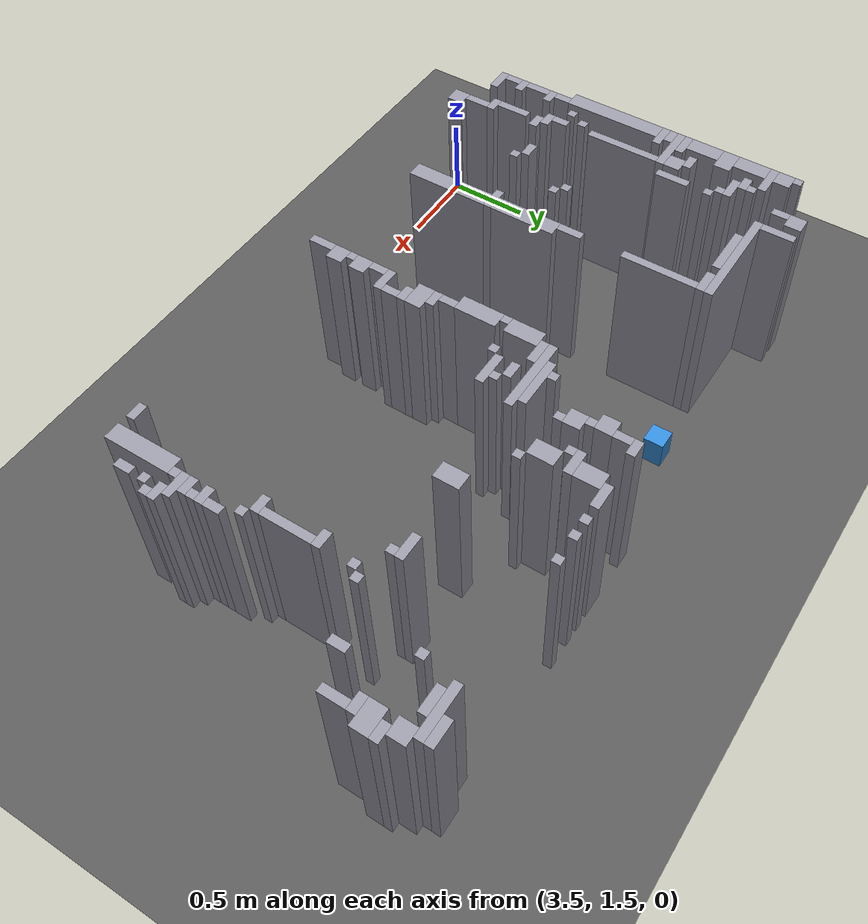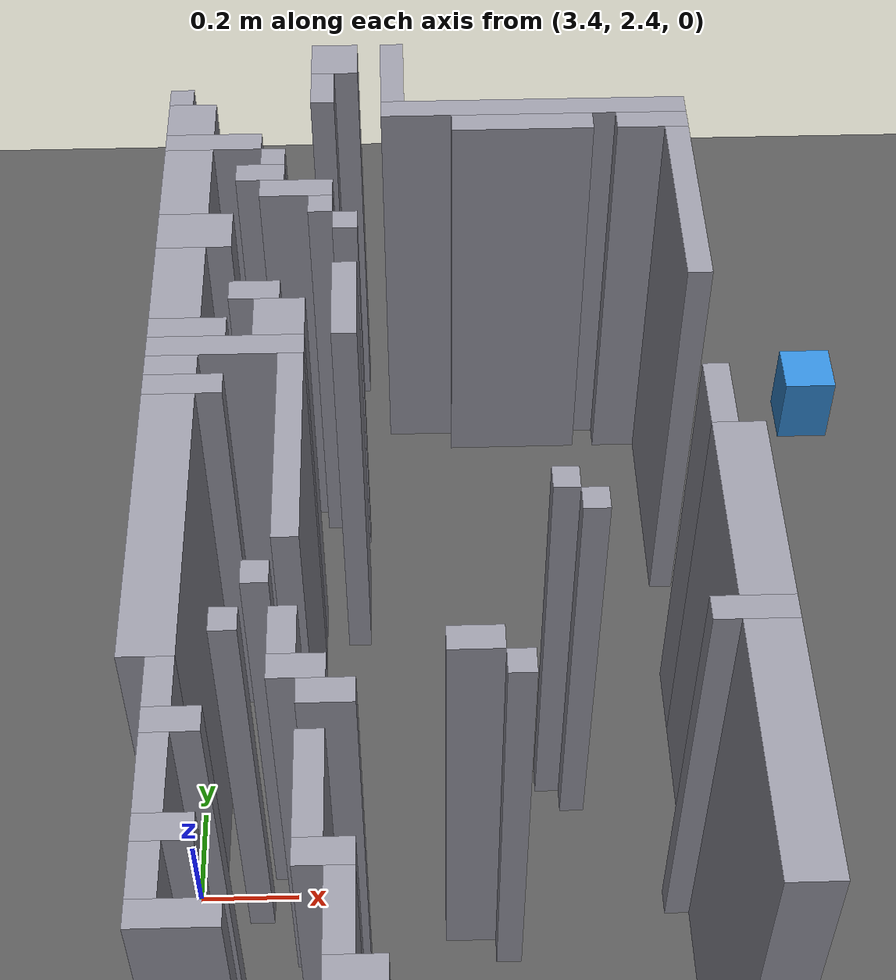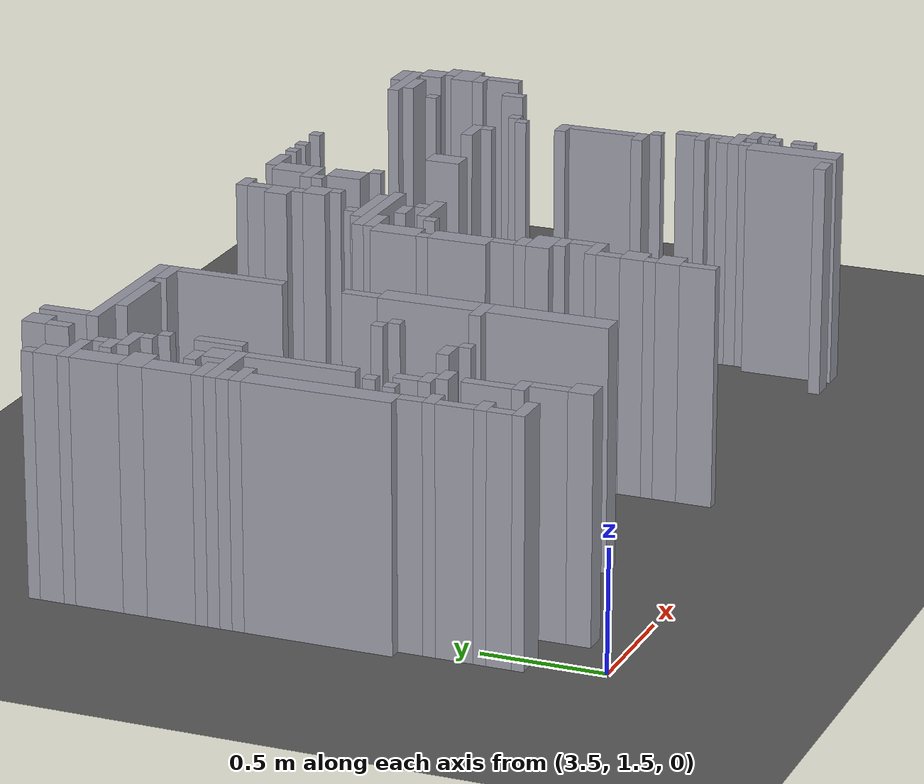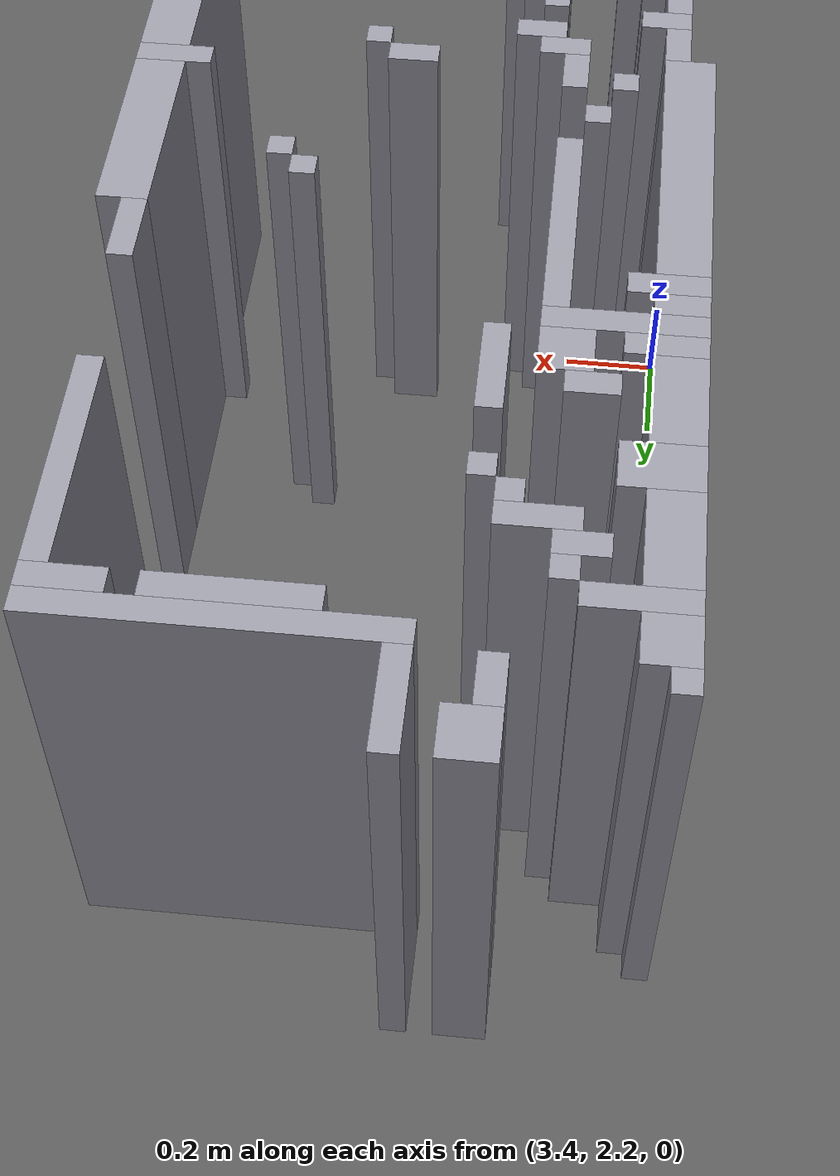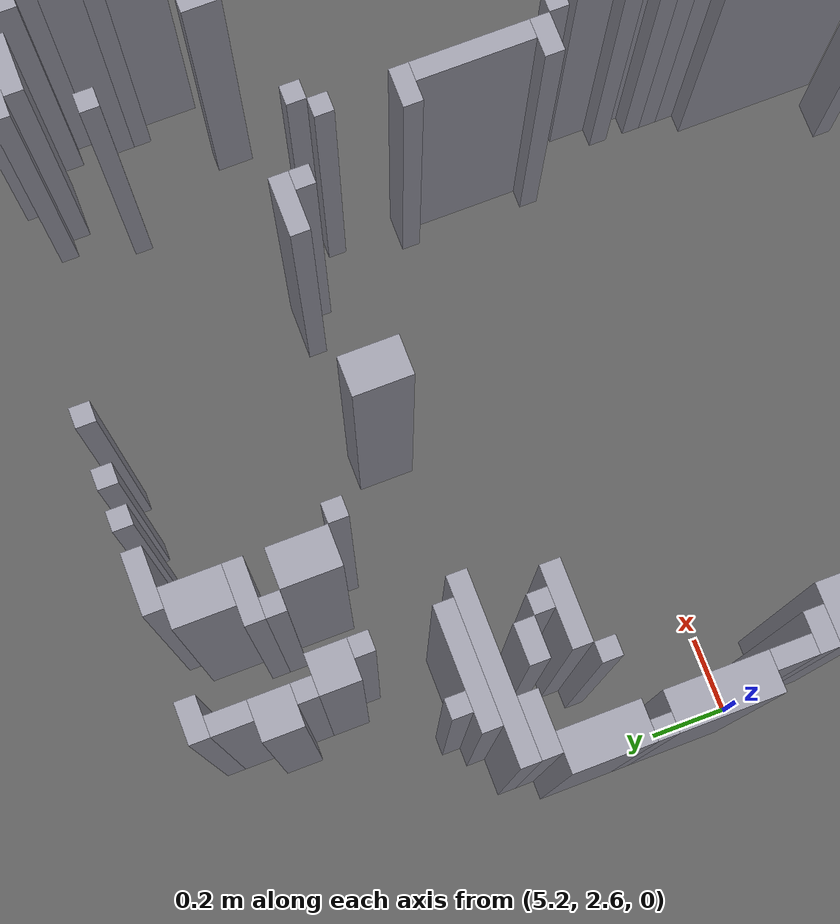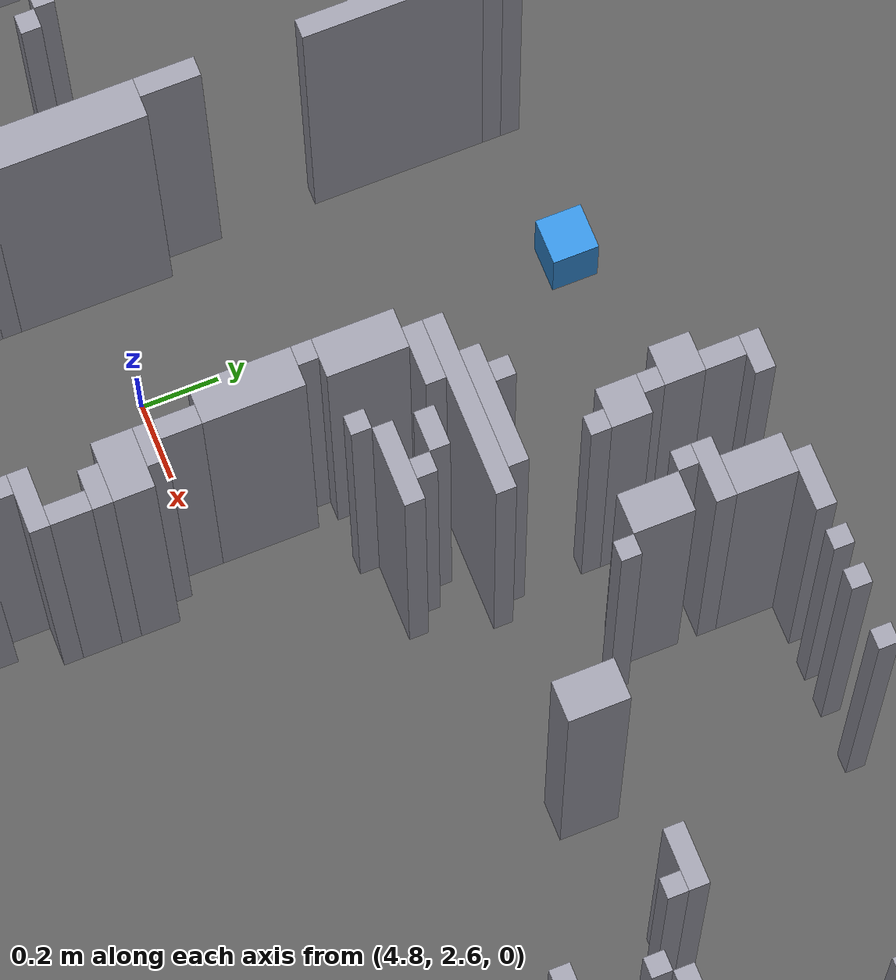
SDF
<sdf version="1.8">
 <world name="dimi">
  <model name="ground">
   <static>true</static>
   <link name="ground_link">
    <collision name="c"><geometry><plane><normal>0 0 1</normal><size>60 60</size></plane></geometry></collision>
    <visual name="v">
     <geometry><plane><normal>0 0 1</normal><size>60 60</size></plane></geometry>
     <material><ambient>0.3 0.3 0.3 1</ambient><diffuse>0.35 0.35 0.35 1</diffuse></material>
    </visual>
   </link>
  </model>
  <model name="walls">
   <static>true</static>
   <link name="wall_470">
    <pose>3.7030 3.8920 0.5000 0 0 0</pose>
    <collision name="c"><geometry><box><size>0.1000 0.1000 1.0000</size></box></geometry></collision>
    <visual name="v">
     <geometry><box><size>0.1000 0.1000 1.0000</size></box></geometry>
     <material><ambient>0.5 0.5 0.55 1</ambient><diffuse>0.6 0.6 0.65 1</diffuse></material>
    </visual>
   </link>
   <link name="wall_471">
    <pose>3.8280 3.8420 0.5000 0 0 0</pose>
    <collision name="c"><geometry><box><size>0.0500 0.2000 1.0000</size></box></geometry></collision>
    <visual name="v">
     <geometry><box><size>0.0500 0.2000 1.0000</size></box></geometry>
     <material><ambient>0.5 0.5 0.55 1</ambient><diffuse>0.6 0.6 0.65 1</diffuse></material>
    </visual>
   </link>
   <link name="wall_478">
    <pose>5.5530 3.8670 0.5000 0 0 0</pose>
    <collision name="c"><geometry><box><size>0.1000 0.0500 1.0000</size></box></geometry></collision>
    <visual name="v">
     <geometry><box><size>0.1000 0.0500 1.0000</size></box></geometry>
     <material><ambient>0.5 0.5 0.55 1</ambient><diffuse>0.6 0.6 0.65 1</diffuse></material>
    </visual>
   </link>
   <link name="wall_479">
    <pose>5.8780 3.8670 0.5000 0 0 0</pose>
    <collision name="c"><geometry><box><size>0.1500 0.0500 1.0000</size></box></geometry></collision>
    <visual name="v">
     <geometry><box><size>0.1500 0.0500 1.0000</size></box></geometry>
     <material><ambient>0.5 0.5 0.55 1</ambient><diffuse>0.6 0.6 0.65 1</diffuse></material>
    </visual>
   </link>
   <link name="wall_480">
    <pose>6.0280 3.8670 0.5000 0 0 0</pose>
    <collision name="c"><geometry><box><size>0.0500 0.0500 1.0000</size></box></geometry></collision>
    <visual name="v">
     <geometry><box><size>0.0500 0.0500 1.0000</size></box></geometry>
     <material><ambient>0.5 0.5 0.55 1</ambient><diffuse>0.6 0.6 0.65 1</diffuse></material>
    </visual>
   </link>
   <link name="wall_481">
    <pose>6.1280 3.8670 0.5000 0 0 0</pose>
    <collision name="c"><geometry><box><size>0.0500 0.0500 1.0000</size></box></geometry></collision>
    <visual name="v">
     <geometry><box><size>0.0500 0.0500 1.0000</size></box></geometry>
     <material><ambient>0.5 0.5 0.55 1</ambient><diffuse>0.6 0.6 0.65 1</diffuse></material>
    </visual>
   </link>
   <link name="wall_482">
    <pose>6.2780 3.8670 0.5000 0 0 0</pose>
    <collision name="c"><geometry><box><size>0.0500 0.0500 1.0000</size></box></geometry></collision>
    <visual name="v">
     <geometry><box><size>0.0500 0.0500 1.0000</size></box></geometry>
     <material><ambient>0.5 0.5 0.55 1</ambient><diffuse>0.6 0.6 0.65 1</diffuse></material>
    </visual>
   </link>
   <link name="wall_483">
    <pose>7.2280 3.8670 0.5000 0 0 0</pose>
    <collision name="c"><geometry><box><size>0.1500 0.0500 1.0000</size></box></geometry></collision>
    <visual name="v">
     <geometry><box><size>0.1500 0.0500 1.0000</size></box></geometry>
     <material><ambient>0.5 0.5 0.55 1</ambient><diffuse>0.6 0.6 0.65 1</diffuse></material>
    </visual>
   </link>
   <link name="wall_486">
    <pose>3.6780 3.7920 0.5000 0 0 0</pose>
    <collision name="c"><geometry><box><size>0.0500 0.1000 1.0000</size></box></geometry></collision>
    <visual name="v">
     <geometry><box><size>0.0500 0.1000 1.0000</size></box></geometry>
     <material><ambient>0.5 0.5 0.55 1</ambient><diffuse>0.6 0.6 0.65 1</diffuse></material>
    </visual>
   </link>
   <link name="wall_487">
    <pose>5.5280 3.7920 0.5000 0 0 0</pose>
    <collision name="c"><geometry><box><size>0.0500 0.1000 1.0000</size></box></geometry></collision>
    <visual name="v">
     <geometry><box><size>0.0500 0.1000 1.0000</size></box></geometry>
     <material><ambient>0.5 0.5 0.55 1</ambient><diffuse>0.6 0.6 0.65 1</diffuse></material>
    </visual>
   </link>
   <link name="wall_488">
    <pose>5.8030 3.7670 0.5000 0 0 0</pose>
    <collision name="c"><geometry><box><size>0.1000 0.1500 1.0000</size></box></geometry></collision>
    <visual name="v">
     <geometry><box><size>0.1000 0.1500 1.0000</size></box></geometry>
     <material><ambient>0.5 0.5 0.55 1</ambient><diffuse>0.6 0.6 0.65 1</diffuse></material>
    </visual>
   </link>
   <link name="wall_489">
    <pose>7.1530 3.8170 0.5000 0 0 0</pose>
    <collision name="c"><geometry><box><size>0.3000 0.0500 1.0000</size></box></geometry></collision>
    <visual name="v">
     <geometry><box><size>0.3000 0.0500 1.0000</size></box></geometry>
     <material><ambient>0.5 0.5 0.55 1</ambient><diffuse>0.6 0.6 0.65 1</diffuse></material>
    </visual>
   </link>
   <link name="wall_491">
    <pose>3.3780 3.7670 0.5000 0 0 0</pose>
    <collision name="c"><geometry><box><size>0.0500 0.0500 1.0000</size></box></geometry></collision>
    <visual name="v">
     <geometry><box><size>0.0500 0.0500 1.0000</size></box></geometry>
     <material><ambient>0.5 0.5 0.55 1</ambient><diffuse>0.6 0.6 0.65 1</diffuse></material>
    </visual>
   </link>
   <link name="wall_492">
    <pose>7.1280 3.7670 0.5000 0 0 0</pose>
    <collision name="c"><geometry><box><size>0.1500 0.0500 1.0000</size></box></geometry></collision>
    <visual name="v">
     <geometry><box><size>0.1500 0.0500 1.0000</size></box></geometry>
     <material><ambient>0.5 0.5 0.55 1</ambient><diffuse>0.6 0.6 0.65 1</diffuse></material>
    </visual>
   </link>
   <link name="wall_493">
    <pose>7.3030 3.7420 0.5000 0 0 0</pose>
    <collision name="c"><geometry><box><size>0.1000 0.1000 1.0000</size></box></geometry></collision>
    <visual name="v">
     <geometry><box><size>0.1000 0.1000 1.0000</size></box></geometry>
     <material><ambient>0.5 0.5 0.55 1</ambient><diffuse>0.6 0.6 0.65 1</diffuse></material>
    </visual>
   </link>
   <link name="wall_494">
    <pose>3.4030 3.6920 0.5000 0 0 0</pose>
    <collision name="c"><geometry><box><size>0.1000 0.1000 1.0000</size></box></geometry></collision>
    <visual name="v">
     <geometry><box><size>0.1000 0.1000 1.0000</size></box></geometry>
     <material><ambient>0.5 0.5 0.55 1</ambient><diffuse>0.6 0.6 0.65 1</diffuse></material>
    </visual>
   </link>
   <link name="wall_495">
    <pose>4.1280 3.7170 0.5000 0 0 0</pose>
    <collision name="c"><geometry><box><size>0.6500 0.0500 1.0000</size></box></geometry></collision>
    <visual name="v">
     <geometry><box><size>0.6500 0.0500 1.0000</size></box></geometry>
     <material><ambient>0.5 0.5 0.55 1</ambient><diffuse>0.6 0.6 0.65 1</diffuse></material>
    </visual>
   </link>
   <link name="wall_496">
    <pose>5.5030 3.6920 0.5000 0 0 0</pose>
    <collision name="c"><geometry><box><size>0.1000 0.1000 1.0000</size></box></geometry></collision>
    <visual name="v">
     <geometry><box><size>0.1000 0.1000 1.0000</size></box></geometry>
     <material><ambient>0.5 0.5 0.55 1</ambient><diffuse>0.6 0.6 0.65 1</diffuse></material>
    </visual>
   </link>
   <link name="wall_497">
    <pose>4.1030 3.6670 0.5000 0 0 0</pose>
    <collision name="c"><geometry><box><size>0.3000 0.0500 1.0000</size></box></geometry></collision>
    <visual name="v">
     <geometry><box><size>0.3000 0.0500 1.0000</size></box></geometry>
     <material><ambient>0.5 0.5 0.55 1</ambient><diffuse>0.6 0.6 0.65 1</diffuse></material>
    </visual>
   </link>
   <link name="wall_498">
    <pose>4.3780 3.6670 0.5000 0 0 0</pose>
    <collision name="c"><geometry><box><size>0.1500 0.0500 1.0000</size></box></geometry></collision>
    <visual name="v">
     <geometry><box><size>0.1500 0.0500 1.0000</size></box></geometry>
     <material><ambient>0.5 0.5 0.55 1</ambient><diffuse>0.6 0.6 0.65 1</diffuse></material>
    </visual>
   </link>
   <link name="wall_499">
    <pose>5.7780 3.6670 0.5000 0 0 0</pose>
    <collision name="c"><geometry><box><size>0.1500 0.0500 1.0000</size></box></geometry></collision>
    <visual name="v">
     <geometry><box><size>0.1500 0.0500 1.0000</size></box></geometry>
     <material><ambient>0.5 0.5 0.55 1</ambient><diffuse>0.6 0.6 0.65 1</diffuse></material>
    </visual>
   </link>
   <link name="wall_500">
    <pose>7.3530 3.6670 0.5000 0 0 0</pose>
    <collision name="c"><geometry><box><size>0.1000 0.0500 1.0000</size></box></geometry></collision>
    <visual name="v">
     <geometry><box><size>0.1000 0.0500 1.0000</size></box></geometry>
     <material><ambient>0.5 0.5 0.55 1</ambient><diffuse>0.6 0.6 0.65 1</diffuse></material>
    </visual>
   </link>
   <link name="wall_501">
    <pose>3.4530 3.6170 0.5000 0 0 0</pose>
    <collision name="c"><geometry><box><size>0.2000 0.0500 1.0000</size></box></geometry></collision>
    <visual name="v">
     <geometry><box><size>0.2000 0.0500 1.0000</size></box></geometry>
     <material><ambient>0.5 0.5 0.55 1</ambient><diffuse>0.6 0.6 0.65 1</diffuse></material>
    </visual>
   </link>
   <link name="wall_502">
    <pose>4.4280 3.4170 0.5000 0 0 0</pose>
    <collision name="c"><geometry><box><size>0.0500 0.4500 1.0000</size></box></geometry></collision>
    <visual name="v">
     <geometry><box><size>0.0500 0.4500 1.0000</size></box></geometry>
     <material><ambient>0.5 0.5 0.55 1</ambient><diffuse>0.6 0.6 0.65 1</diffuse></material>
    </visual>
   </link>
   <link name="wall_503">
    <pose>5.5280 3.6170 0.5000 0 0 0</pose>
    <collision name="c"><geometry><box><size>0.0500 0.0500 1.0000</size></box></geometry></collision>
    <visual name="v">
     <geometry><box><size>0.0500 0.0500 1.0000</size></box></geometry>
     <material><ambient>0.5 0.5 0.55 1</ambient><diffuse>0.6 0.6 0.65 1</diffuse></material>
    </visual>
   </link>
   <link name="wall_504">
    <pose>5.7280 3.6170 0.5000 0 0 0</pose>
    <collision name="c"><geometry><box><size>0.0500 0.0500 1.0000</size></box></geometry></collision>
    <visual name="v">
     <geometry><box><size>0.0500 0.0500 1.0000</size></box></geometry>
     <material><ambient>0.5 0.5 0.55 1</ambient><diffuse>0.6 0.6 0.65 1</diffuse></material>
    </visual>
   </link>
   <link name="wall_505">
    <pose>6.9780 3.6170 0.5000 0 0 0</pose>
    <collision name="c"><geometry><box><size>0.0500 0.0500 1.0000</size></box></geometry></collision>
    <visual name="v">
     <geometry><box><size>0.0500 0.0500 1.0000</size></box></geometry>
     <material><ambient>0.5 0.5 0.55 1</ambient><diffuse>0.6 0.6 0.65 1</diffuse></material>
    </visual>
   </link>
   <link name="wall_506">
    <pose>7.3280 3.5920 0.5000 0 0 0</pose>
    <collision name="c"><geometry><box><size>0.1500 0.1000 1.0000</size></box></geometry></collision>
    <visual name="v">
     <geometry><box><size>0.1500 0.1000 1.0000</size></box></geometry>
     <material><ambient>0.5 0.5 0.55 1</ambient><diffuse>0.6 0.6 0.65 1</diffuse></material>
    </visual>
   </link>
   <link name="wall_507">
    <pose>3.4030 3.4920 0.5000 0 0 0</pose>
    <collision name="c"><geometry><box><size>0.1000 0.2000 1.0000</size></box></geometry></collision>
    <visual name="v">
     <geometry><box><size>0.1000 0.2000 1.0000</size></box></geometry>
     <material><ambient>0.5 0.5 0.55 1</ambient><diffuse>0.6 0.6 0.65 1</diffuse></material>
    </visual>
   </link>
   <link name="wall_508">
    <pose>3.5780 3.5670 0.5000 0 0 0</pose>
    <collision name="c"><geometry><box><size>0.0500 0.0500 1.0000</size></box></geometry></collision>
    <visual name="v">
     <geometry><box><size>0.0500 0.0500 1.0000</size></box></geometry>
     <material><ambient>0.5 0.5 0.55 1</ambient><diffuse>0.6 0.6 0.65 1</diffuse></material>
    </visual>
   </link>
   <link name="wall_509">
    <pose>5.5530 3.5420 0.5000 0 0 0</pose>
    <collision name="c"><geometry><box><size>0.1000 0.1000 1.0000</size></box></geometry></collision>
    <visual name="v">
     <geometry><box><size>0.1000 0.1000 1.0000</size></box></geometry>
     <material><ambient>0.5 0.5 0.55 1</ambient><diffuse>0.6 0.6 0.65 1</diffuse></material>
    </visual>
   </link>
   <link name="wall_510">
    <pose>5.8030 3.5170 0.5000 0 0 0</pose>
    <collision name="c"><geometry><box><size>0.1000 0.1500 1.0000</size></box></geometry></collision>
    <visual name="v">
     <geometry><box><size>0.1000 0.1500 1.0000</size></box></geometry>
     <material><ambient>0.5 0.5 0.55 1</ambient><diffuse>0.6 0.6 0.65 1</diffuse></material>
    </visual>
   </link>
   <link name="wall_512">
    <pose>3.5530 3.5170 0.5000 0 0 0</pose>
    <collision name="c"><geometry><box><size>0.1000 0.0500 1.0000</size></box></geometry></collision>
    <visual name="v">
     <geometry><box><size>0.1000 0.0500 1.0000</size></box></geometry>
     <material><ambient>0.5 0.5 0.55 1</ambient><diffuse>0.6 0.6 0.65 1</diffuse></material>
    </visual>
   </link>
   <link name="wall_513">
    <pose>7.3030 3.5170 0.5000 0 0 0</pose>
    <collision name="c"><geometry><box><size>0.1000 0.0500 1.0000</size></box></geometry></collision>
    <visual name="v">
     <geometry><box><size>0.1000 0.0500 1.0000</size></box></geometry>
     <material><ambient>0.5 0.5 0.55 1</ambient><diffuse>0.6 0.6 0.65 1</diffuse></material>
    </visual>
   </link>
   <link name="wall_514">
    <pose>3.6280 3.4670 0.5000 0 0 0</pose>
    <collision name="c"><geometry><box><size>0.1500 0.0500 1.0000</size></box></geometry></collision>
    <visual name="v">
     <geometry><box><size>0.1500 0.0500 1.0000</size></box></geometry>
     <material><ambient>0.5 0.5 0.55 1</ambient><diffuse>0.6 0.6 0.65 1</diffuse></material>
    </visual>
   </link>
   <link name="wall_515">
    <pose>5.5780 3.4670 0.5000 0 0 0</pose>
    <collision name="c"><geometry><box><size>0.0500 0.0500 1.0000</size></box></geometry></collision>
    <visual name="v">
     <geometry><box><size>0.0500 0.0500 1.0000</size></box></geometry>
     <material><ambient>0.5 0.5 0.55 1</ambient><diffuse>0.6 0.6 0.65 1</diffuse></material>
    </visual>
   </link>
   <link name="wall_516">
    <pose>7.3280 3.4170 0.5000 0 0 0</pose>
    <collision name="c"><geometry><box><size>0.0500 0.1500 1.0000</size></box></geometry></collision>
    <visual name="v">
     <geometry><box><size>0.0500 0.1500 1.0000</size></box></geometry>
     <material><ambient>0.5 0.5 0.55 1</ambient><diffuse>0.6 0.6 0.65 1</diffuse></material>
    </visual>
   </link>
   <link name="wall_517">
    <pose>3.6780 3.4170 0.5000 0 0 0</pose>
    <collision name="c"><geometry><box><size>0.0500 0.0500 1.0000</size></box></geometry></collision>
    <visual name="v">
     <geometry><box><size>0.0500 0.0500 1.0000</size></box></geometry>
     <material><ambient>0.5 0.5 0.55 1</ambient><diffuse>0.6 0.6 0.65 1</diffuse></material>
    </visual>
   </link>
   <link name="wall_518">
    <pose>5.8780 3.4170 0.5000 0 0 0</pose>
    <collision name="c"><geometry><box><size>0.0500 0.0500 1.0000</size></box></geometry></collision>
    <visual name="v">
     <geometry><box><size>0.0500 0.0500 1.0000</size></box></geometry>
     <material><ambient>0.5 0.5 0.55 1</ambient><diffuse>0.6 0.6 0.65 1</diffuse></material>
    </visual>
   </link>
   <link name="wall_520">
    <pose>3.4280 3.3420 0.5000 0 0 0</pose>
    <collision name="c"><geometry><box><size>0.1500 0.1000 1.0000</size></box></geometry></collision>
    <visual name="v">
     <geometry><box><size>0.1500 0.1000 1.0000</size></box></geometry>
     <material><ambient>0.5 0.5 0.55 1</ambient><diffuse>0.6 0.6 0.65 1</diffuse></material>
    </visual>
   </link>
   <link name="wall_521">
    <pose>3.7280 3.3670 0.5000 0 0 0</pose>
    <collision name="c"><geometry><box><size>0.0500 0.0500 1.0000</size></box></geometry></collision>
    <visual name="v">
     <geometry><box><size>0.0500 0.0500 1.0000</size></box></geometry>
     <material><ambient>0.5 0.5 0.55 1</ambient><diffuse>0.6 0.6 0.65 1</diffuse></material>
    </visual>
   </link>
   <link name="wall_523">
    <pose>5.3780 3.3170 0.5000 0 0 0</pose>
    <collision name="c"><geometry><box><size>0.0500 0.0500 1.0000</size></box></geometry></collision>
    <visual name="v">
     <geometry><box><size>0.0500 0.0500 1.0000</size></box></geometry>
     <material><ambient>0.5 0.5 0.55 1</ambient><diffuse>0.6 0.6 0.65 1</diffuse></material>
    </visual>
   </link>
   <link name="wall_524">
    <pose>7.1280 3.2920 0.5000 0 0 0</pose>
    <collision name="c"><geometry><box><size>0.0500 0.1000 1.0000</size></box></geometry></collision>
    <visual name="v">
     <geometry><box><size>0.0500 0.1000 1.0000</size></box></geometry>
     <material><ambient>0.5 0.5 0.55 1</ambient><diffuse>0.6 0.6 0.65 1</diffuse></material>
    </visual>
   </link>
   <link name="wall_525">
    <pose>3.4030 3.1920 0.5000 0 0 0</pose>
    <collision name="c"><geometry><box><size>0.1000 0.2000 1.0000</size></box></geometry></collision>
    <visual name="v">
     <geometry><box><size>0.1000 0.2000 1.0000</size></box></geometry>
     <material><ambient>0.5 0.5 0.55 1</ambient><diffuse>0.6 0.6 0.65 1</diffuse></material>
    </visual>
   </link>
   <link name="wall_526">
    <pose>5.4530 3.2670 0.5000 0 0 0</pose>
    <collision name="c"><geometry><box><size>0.3000 0.0500 1.0000</size></box></geometry></collision>
    <visual name="v">
     <geometry><box><size>0.3000 0.0500 1.0000</size></box></geometry>
     <material><ambient>0.5 0.5 0.55 1</ambient><diffuse>0.6 0.6 0.65 1</diffuse></material>
    </visual>
   </link>
   <link name="wall_527">
    <pose>6.1530 3.2170 0.5000 0 0 0</pose>
    <collision name="c"><geometry><box><size>0.1000 0.1500 1.0000</size></box></geometry></collision>
    <visual name="v">
     <geometry><box><size>0.1000 0.1500 1.0000</size></box></geometry>
     <material><ambient>0.5 0.5 0.55 1</ambient><diffuse>0.6 0.6 0.65 1</diffuse></material>
    </visual>
   </link>
   <link name="wall_528">
    <pose>6.5780 3.2670 0.5000 0 0 0</pose>
    <collision name="c"><geometry><box><size>0.1500 0.0500 1.0000</size></box></geometry></collision>
    <visual name="v">
     <geometry><box><size>0.1500 0.0500 1.0000</size></box></geometry>
     <material><ambient>0.5 0.5 0.55 1</ambient><diffuse>0.6 0.6 0.65 1</diffuse></material>
    </visual>
   </link>
   <link name="wall_530">
    <pose>3.7280 3.1420 0.5000 0 0 0</pose>
    <collision name="c"><geometry><box><size>0.0500 0.2000 1.0000</size></box></geometry></collision>
    <visual name="v">
     <geometry><box><size>0.0500 0.2000 1.0000</size></box></geometry>
     <material><ambient>0.5 0.5 0.55 1</ambient><diffuse>0.6 0.6 0.65 1</diffuse></material>
    </visual>
   </link>
   <link name="wall_531">
    <pose>5.4280 3.2170 0.5000 0 0 0</pose>
    <collision name="c"><geometry><box><size>0.4500 0.0500 1.0000</size></box></geometry></collision>
    <visual name="v">
     <geometry><box><size>0.4500 0.0500 1.0000</size></box></geometry>
     <material><ambient>0.5 0.5 0.55 1</ambient><diffuse>0.6 0.6 0.65 1</diffuse></material>
    </visual>
   </link>
   <link name="wall_532">
    <pose>6.6280 3.2170 0.5000 0 0 0</pose>
    <collision name="c"><geometry><box><size>0.0500 0.0500 1.0000</size></box></geometry></collision>
    <visual name="v">
     <geometry><box><size>0.0500 0.0500 1.0000</size></box></geometry>
     <material><ambient>0.5 0.5 0.55 1</ambient><diffuse>0.6 0.6 0.65 1</diffuse></material>
    </visual>
   </link>
   <link name="wall_534">
    <pose>3.5530 3.1670 0.5000 0 0 0</pose>
    <collision name="c"><geometry><box><size>0.1000 0.0500 1.0000</size></box></geometry></collision>
    <visual name="v">
     <geometry><box><size>0.1000 0.0500 1.0000</size></box></geometry>
     <material><ambient>0.5 0.5 0.55 1</ambient><diffuse>0.6 0.6 0.65 1</diffuse></material>
    </visual>
   </link>
   <link name="wall_535">
    <pose>5.2780 3.1670 0.5000 0 0 0</pose>
    <collision name="c"><geometry><box><size>0.1500 0.0500 1.0000</size></box></geometry></collision>
    <visual name="v">
     <geometry><box><size>0.1500 0.0500 1.0000</size></box></geometry>
     <material><ambient>0.5 0.5 0.55 1</ambient><diffuse>0.6 0.6 0.65 1</diffuse></material>
    </visual>
   </link>
   <link name="wall_536">
    <pose>6.8280 3.1670 0.5000 0 0 0</pose>
    <collision name="c"><geometry><box><size>0.0500 0.0500 1.0000</size></box></geometry></collision>
    <visual name="v">
     <geometry><box><size>0.0500 0.0500 1.0000</size></box></geometry>
     <material><ambient>0.5 0.5 0.55 1</ambient><diffuse>0.6 0.6 0.65 1</diffuse></material>
    </visual>
   </link>
   <link name="wall_537">
    <pose>3.6030 3.0920 0.5000 0 0 0</pose>
    <collision name="c"><geometry><box><size>0.1000 0.1000 1.0000</size></box></geometry></collision>
    <visual name="v">
     <geometry><box><size>0.1000 0.1000 1.0000</size></box></geometry>
     <material><ambient>0.5 0.5 0.55 1</ambient><diffuse>0.6 0.6 0.65 1</diffuse></material>
    </visual>
   </link>
   <link name="wall_538">
    <pose>5.2030 3.0420 0.5000 0 0 0</pose>
    <collision name="c"><geometry><box><size>0.1000 0.2000 1.0000</size></box></geometry></collision>
    <visual name="v">
     <geometry><box><size>0.1000 0.2000 1.0000</size></box></geometry>
     <material><ambient>0.5 0.5 0.55 1</ambient><diffuse>0.6 0.6 0.65 1</diffuse></material>
    </visual>
   </link>
   <link name="wall_539">
    <pose>5.4530 3.1170 0.5000 0 0 0</pose>
    <collision name="c"><geometry><box><size>0.1000 0.0500 1.0000</size></box></geometry></collision>
    <visual name="v">
     <geometry><box><size>0.1000 0.0500 1.0000</size></box></geometry>
     <material><ambient>0.5 0.5 0.55 1</ambient><diffuse>0.6 0.6 0.65 1</diffuse></material>
    </visual>
   </link>
   <link name="wall_540">
    <pose>6.7780 3.1170 0.5000 0 0 0</pose>
    <collision name="c"><geometry><box><size>0.0500 0.0500 1.0000</size></box></geometry></collision>
    <visual name="v">
     <geometry><box><size>0.0500 0.0500 1.0000</size></box></geometry>
     <material><ambient>0.5 0.5 0.55 1</ambient><diffuse>0.6 0.6 0.65 1</diffuse></material>
    </visual>
   </link>
   <link name="wall_541">
    <pose>3.4280 3.0670 0.5000 0 0 0</pose>
    <collision name="c"><geometry><box><size>0.1500 0.0500 1.0000</size></box></geometry></collision>
    <visual name="v">
     <geometry><box><size>0.1500 0.0500 1.0000</size></box></geometry>
     <material><ambient>0.5 0.5 0.55 1</ambient><diffuse>0.6 0.6 0.65 1</diffuse></material>
    </visual>
   </link>
   <link name="wall_542">
    <pose>5.5280 3.0670 0.5000 0 0 0</pose>
    <collision name="c"><geometry><box><size>0.0500 0.0500 1.0000</size></box></geometry></collision>
    <visual name="v">
     <geometry><box><size>0.0500 0.0500 1.0000</size></box></geometry>
     <material><ambient>0.5 0.5 0.55 1</ambient><diffuse>0.6 0.6 0.65 1</diffuse></material>
    </visual>
   </link>
   <link name="wall_543">
    <pose>3.5030 3.0170 0.5000 0 0 0</pose>
    <collision name="c"><geometry><box><size>0.3000 0.0500 1.0000</size></box></geometry></collision>
    <visual name="v">
     <geometry><box><size>0.3000 0.0500 1.0000</size></box></geometry>
     <material><ambient>0.5 0.5 0.55 1</ambient><diffuse>0.6 0.6 0.65 1</diffuse></material>
    </visual>
   </link>
   <link name="wall_544">
    <pose>5.5030 3.0170 0.5000 0 0 0</pose>
    <collision name="c"><geometry><box><size>0.2000 0.0500 1.0000</size></box></geometry></collision>
    <visual name="v">
     <geometry><box><size>0.2000 0.0500 1.0000</size></box></geometry>
     <material><ambient>0.5 0.5 0.55 1</ambient><diffuse>0.6 0.6 0.65 1</diffuse></material>
    </visual>
   </link>
   <link name="wall_545">
    <pose>3.4030 2.9670 0.5000 0 0 0</pose>
    <collision name="c"><geometry><box><size>0.1000 0.0500 1.0000</size></box></geometry></collision>
    <visual name="v">
     <geometry><box><size>0.1000 0.0500 1.0000</size></box></geometry>
     <material><ambient>0.5 0.5 0.55 1</ambient><diffuse>0.6 0.6 0.65 1</diffuse></material>
    </visual>
   </link>
   <link name="wall_546">
    <pose>3.6280 2.7670 0.5000 0 0 0</pose>
    <collision name="c"><geometry><box><size>0.0500 0.4500 1.0000</size></box></geometry></collision>
    <visual name="v">
     <geometry><box><size>0.0500 0.4500 1.0000</size></box></geometry>
     <material><ambient>0.5 0.5 0.55 1</ambient><diffuse>0.6 0.6 0.65 1</diffuse></material>
    </visual>
   </link>
   <link name="wall_547">
    <pose>5.3780 2.9670 0.5000 0 0 0</pose>
    <collision name="c"><geometry><box><size>0.0500 0.0500 1.0000</size></box></geometry></collision>
    <visual name="v">
     <geometry><box><size>0.0500 0.0500 1.0000</size></box></geometry>
     <material><ambient>0.5 0.5 0.55 1</ambient><diffuse>0.6 0.6 0.65 1</diffuse></material>
    </visual>
   </link>
   <link name="wall_549">
    <pose>3.4280 2.9170 0.5000 0 0 0</pose>
    <collision name="c"><geometry><box><size>0.1500 0.0500 1.0000</size></box></geometry></collision>
    <visual name="v">
     <geometry><box><size>0.1500 0.0500 1.0000</size></box></geometry>
     <material><ambient>0.5 0.5 0.55 1</ambient><diffuse>0.6 0.6 0.65 1</diffuse></material>
    </visual>
   </link>
   <link name="wall_550">
    <pose>4.4280 2.8670 0.5000 0 0 0</pose>
    <collision name="c"><geometry><box><size>0.0500 0.1500 1.0000</size></box></geometry></collision>
    <visual name="v">
     <geometry><box><size>0.0500 0.1500 1.0000</size></box></geometry>
     <material><ambient>0.5 0.5 0.55 1</ambient><diffuse>0.6 0.6 0.65 1</diffuse></material>
    </visual>
   </link>
   <link name="wall_551">
    <pose>5.1780 2.9170 0.5000 0 0 0</pose>
    <collision name="c"><geometry><box><size>0.0500 0.0500 1.0000</size></box></geometry></collision>
    <visual name="v">
     <geometry><box><size>0.0500 0.0500 1.0000</size></box></geometry>
     <material><ambient>0.5 0.5 0.55 1</ambient><diffuse>0.6 0.6 0.65 1</diffuse></material>
    </visual>
   </link>
   <link name="wall_552">
    <pose>6.7530 2.9170 0.5000 0 0 0</pose>
    <collision name="c"><geometry><box><size>0.1000 0.0500 1.0000</size></box></geometry></collision>
    <visual name="v">
     <geometry><box><size>0.1000 0.0500 1.0000</size></box></geometry>
     <material><ambient>0.5 0.5 0.55 1</ambient><diffuse>0.6 0.6 0.65 1</diffuse></material>
    </visual>
   </link>
   <link name="wall_553">
    <pose>3.4030 2.5920 0.5000 0 0 0</pose>
    <collision name="c"><geometry><box><size>0.1000 0.6000 1.0000</size></box></geometry></collision>
    <visual name="v">
     <geometry><box><size>0.1000 0.6000 1.0000</size></box></geometry>
     <material><ambient>0.5 0.5 0.55 1</ambient><diffuse>0.6 0.6 0.65 1</diffuse></material>
    </visual>
   </link>
   <link name="wall_554">
    <pose>5.2030 2.7670 0.5000 0 0 0</pose>
    <collision name="c"><geometry><box><size>0.1000 0.2500 1.0000</size></box></geometry></collision>
    <visual name="v">
     <geometry><box><size>0.1000 0.2500 1.0000</size></box></geometry>
     <material><ambient>0.5 0.5 0.55 1</ambient><diffuse>0.6 0.6 0.65 1</diffuse></material>
    </visual>
   </link>
   <link name="wall_555">
    <pose>6.7780 2.7420 0.5000 0 0 0</pose>
    <collision name="c"><geometry><box><size>0.0500 0.3000 1.0000</size></box></geometry></collision>
    <visual name="v">
     <geometry><box><size>0.0500 0.3000 1.0000</size></box></geometry>
     <material><ambient>0.5 0.5 0.55 1</ambient><diffuse>0.6 0.6 0.65 1</diffuse></material>
    </visual>
   </link>
   <link name="wall_558">
    <pose>4.4530 2.5920 0.5000 0 0 0</pose>
    <collision name="c"><geometry><box><size>0.1000 0.4000 1.0000</size></box></geometry></collision>
    <visual name="v">
     <geometry><box><size>0.1000 0.4000 1.0000</size></box></geometry>
     <material><ambient>0.5 0.5 0.55 1</ambient><diffuse>0.6 0.6 0.65 1</diffuse></material>
    </visual>
   </link>
   <link name="wall_561">
    <pose>4.1280 2.6670 0.5000 0 0 0</pose>
    <collision name="c"><geometry><box><size>0.0500 0.0500 1.0000</size></box></geometry></collision>
    <visual name="v">
     <geometry><box><size>0.0500 0.0500 1.0000</size></box></geometry>
     <material><ambient>0.5 0.5 0.55 1</ambient><diffuse>0.6 0.6 0.65 1</diffuse></material>
    </visual>
   </link>
   <link name="wall_563">
    <pose>4.1780 2.6170 0.5000 0 0 0</pose>
    <collision name="c"><geometry><box><size>0.0500 0.0500 1.0000</size></box></geometry></collision>
    <visual name="v">
     <geometry><box><size>0.0500 0.0500 1.0000</size></box></geometry>
     <material><ambient>0.5 0.5 0.55 1</ambient><diffuse>0.6 0.6 0.65 1</diffuse></material>
    </visual>
   </link>
   <link name="wall_564">
    <pose>5.2280 2.5920 0.5000 0 0 0</pose>
    <collision name="c"><geometry><box><size>0.0500 0.1000 1.0000</size></box></geometry></collision>
    <visual name="v">
     <geometry><box><size>0.0500 0.1000 1.0000</size></box></geometry>
     <material><ambient>0.5 0.5 0.55 1</ambient><diffuse>0.6 0.6 0.65 1</diffuse></material>
    </visual>
   </link>
   <link name="wall_566">
    <pose>6.7530 2.5670 0.5000 0 0 0</pose>
    <collision name="c"><geometry><box><size>0.1000 0.0500 1.0000</size></box></geometry></collision>
    <visual name="v">
     <geometry><box><size>0.1000 0.0500 1.0000</size></box></geometry>
     <material><ambient>0.5 0.5 0.55 1</ambient><diffuse>0.6 0.6 0.65 1</diffuse></material>
    </visual>
   </link>
   <link name="wall_568">
    <pose>5.2530 2.5170 0.5000 0 0 0</pose>
    <collision name="c"><geometry><box><size>0.1000 0.0500 1.0000</size></box></geometry></collision>
    <visual name="v">
     <geometry><box><size>0.1000 0.0500 1.0000</size></box></geometry>
     <material><ambient>0.5 0.5 0.55 1</ambient><diffuse>0.6 0.6 0.65 1</diffuse></material>
    </visual>
   </link>
   <link name="wall_569">
    <pose>6.8280 2.5170 0.5000 0 0 0</pose>
    <collision name="c"><geometry><box><size>0.0500 0.0500 1.0000</size></box></geometry></collision>
    <visual name="v">
     <geometry><box><size>0.0500 0.0500 1.0000</size></box></geometry>
     <material><ambient>0.5 0.5 0.55 1</ambient><diffuse>0.6 0.6 0.65 1</diffuse></material>
    </visual>
   </link>
   <link name="wall_571">
    <pose>3.5780 2.4670 0.5000 0 0 0</pose>
    <collision name="c"><geometry><box><size>0.0500 0.0500 1.0000</size></box></geometry></collision>
    <visual name="v">
     <geometry><box><size>0.0500 0.0500 1.0000</size></box></geometry>
     <material><ambient>0.5 0.5 0.55 1</ambient><diffuse>0.6 0.6 0.65 1</diffuse></material>
    </visual>
   </link>
   <link name="wall_572">
    <pose>5.2780 2.4420 0.5000 0 0 0</pose>
    <collision name="c"><geometry><box><size>0.1500 0.1000 1.0000</size></box></geometry></collision>
    <visual name="v">
     <geometry><box><size>0.1500 0.1000 1.0000</size></box></geometry>
     <material><ambient>0.5 0.5 0.55 1</ambient><diffuse>0.6 0.6 0.65 1</diffuse></material>
    </visual>
   </link>
   <link name="wall_575">
    <pose>6.8780 2.3920 0.5000 0 0 0</pose>
    <collision name="c"><geometry><box><size>0.0500 0.1000 1.0000</size></box></geometry></collision>
    <visual name="v">
     <geometry><box><size>0.0500 0.1000 1.0000</size></box></geometry>
     <material><ambient>0.5 0.5 0.55 1</ambient><diffuse>0.6 0.6 0.65 1</diffuse></material>
    </visual>
   </link>
   <link name="wall_576">
    <pose>3.5280 2.3670 0.5000 0 0 0</pose>
    <collision name="c"><geometry><box><size>0.0500 0.0500 1.0000</size></box></geometry></collision>
    <visual name="v">
     <geometry><box><size>0.0500 0.0500 1.0000</size></box></geometry>
     <material><ambient>0.5 0.5 0.55 1</ambient><diffuse>0.6 0.6 0.65 1</diffuse></material>
    </visual>
   </link>
   <link name="wall_577">
    <pose>3.6280 2.3420 0.5000 0 0 0</pose>
    <collision name="c"><geometry><box><size>0.0500 0.1000 1.0000</size></box></geometry></collision>
    <visual name="v">
     <geometry><box><size>0.0500 0.1000 1.0000</size></box></geometry>
     <material><ambient>0.5 0.5 0.55 1</ambient><diffuse>0.6 0.6 0.65 1</diffuse></material>
    </visual>
   </link>
   <link name="wall_578">
    <pose>4.4280 2.3670 0.5000 0 0 0</pose>
    <collision name="c"><geometry><box><size>0.1500 0.0500 1.0000</size></box></geometry></collision>
    <visual name="v">
     <geometry><box><size>0.1500 0.0500 1.0000</size></box></geometry>
     <material><ambient>0.5 0.5 0.55 1</ambient><diffuse>0.6 0.6 0.65 1</diffuse></material>
    </visual>
   </link>
   <link name="wall_579">
    <pose>5.3030 2.3670 0.5000 0 0 0</pose>
    <collision name="c"><geometry><box><size>0.1000 0.0500 1.0000</size></box></geometry></collision>
    <visual name="v">
     <geometry><box><size>0.1000 0.0500 1.0000</size></box></geometry>
     <material><ambient>0.5 0.5 0.55 1</ambient><diffuse>0.6 0.6 0.65 1</diffuse></material>
    </visual>
   </link>
   <link name="wall_580">
    <pose>3.9530 2.3170 0.5000 0 0 0</pose>
    <collision name="c"><geometry><box><size>0.1000 0.0500 1.0000</size></box></geometry></collision>
    <visual name="v">
     <geometry><box><size>0.1000 0.0500 1.0000</size></box></geometry>
     <material><ambient>0.5 0.5 0.55 1</ambient><diffuse>0.6 0.6 0.65 1</diffuse></material>
    </visual>
   </link>
   <link name="wall_581">
    <pose>4.4530 2.0920 0.5000 0 0 0</pose>
    <collision name="c"><geometry><box><size>0.1000 0.5000 1.0000</size></box></geometry></collision>
    <visual name="v">
     <geometry><box><size>0.1000 0.5000 1.0000</size></box></geometry>
     <material><ambient>0.5 0.5 0.55 1</ambient><diffuse>0.6 0.6 0.65 1</diffuse></material>
    </visual>
   </link>
   <link name="wall_582">
    <pose>5.3280 2.2920 0.5000 0 0 0</pose>
    <collision name="c"><geometry><box><size>0.0500 0.1000 1.0000</size></box></geometry></collision>
    <visual name="v">
     <geometry><box><size>0.0500 0.1000 1.0000</size></box></geometry>
     <material><ambient>0.5 0.5 0.55 1</ambient><diffuse>0.6 0.6 0.65 1</diffuse></material>
    </visual>
   </link>
   <link name="wall_583">
    <pose>6.8530 2.3170 0.5000 0 0 0</pose>
    <collision name="c"><geometry><box><size>0.1000 0.0500 1.0000</size></box></geometry></collision>
    <visual name="v">
     <geometry><box><size>0.1000 0.0500 1.0000</size></box></geometry>
     <material><ambient>0.5 0.5 0.55 1</ambient><diffuse>0.6 0.6 0.65 1</diffuse></material>
    </visual>
   </link>
   <link name="wall_585">
    <pose>3.4280 2.2420 0.5000 0 0 0</pose>
    <collision name="c"><geometry><box><size>0.0500 0.1000 1.0000</size></box></geometry></collision>
    <visual name="v">
     <geometry><box><size>0.0500 0.1000 1.0000</size></box></geometry>
     <material><ambient>0.5 0.5 0.55 1</ambient><diffuse>0.6 0.6 0.65 1</diffuse></material>
    </visual>
   </link>
   <link name="wall_586">
    <pose>3.6530 2.2670 0.5000 0 0 0</pose>
    <collision name="c"><geometry><box><size>0.1000 0.0500 1.0000</size></box></geometry></collision>
    <visual name="v">
     <geometry><box><size>0.1000 0.0500 1.0000</size></box></geometry>
     <material><ambient>0.5 0.5 0.55 1</ambient><diffuse>0.6 0.6 0.65 1</diffuse></material>
    </visual>
   </link>
   <link name="wall_587">
    <pose>4.0280 2.2670 0.5000 0 0 0</pose>
    <collision name="c"><geometry><box><size>0.0500 0.0500 1.0000</size></box></geometry></collision>
    <visual name="v">
     <geometry><box><size>0.0500 0.0500 1.0000</size></box></geometry>
     <material><ambient>0.5 0.5 0.55 1</ambient><diffuse>0.6 0.6 0.65 1</diffuse></material>
    </visual>
   </link>
   <link name="wall_588">
    <pose>6.8780 2.2670 0.5000 0 0 0</pose>
    <collision name="c"><geometry><box><size>0.0500 0.0500 1.0000</size></box></geometry></collision>
    <visual name="v">
     <geometry><box><size>0.0500 0.0500 1.0000</size></box></geometry>
     <material><ambient>0.5 0.5 0.55 1</ambient><diffuse>0.6 0.6 0.65 1</diffuse></material>
    </visual>
   </link>
   <link name="wall_590">
    <pose>3.7030 2.2170 0.5000 0 0 0</pose>
    <collision name="c"><geometry><box><size>0.1000 0.0500 1.0000</size></box></geometry></collision>
    <visual name="v">
     <geometry><box><size>0.1000 0.0500 1.0000</size></box></geometry>
     <material><ambient>0.5 0.5 0.55 1</ambient><diffuse>0.6 0.6 0.65 1</diffuse></material>
    </visual>
   </link>
   <link name="wall_591">
    <pose>5.2780 2.2170 0.5000 0 0 0</pose>
    <collision name="c"><geometry><box><size>0.1500 0.0500 1.0000</size></box></geometry></collision>
    <visual name="v">
     <geometry><box><size>0.1500 0.0500 1.0000</size></box></geometry>
     <material><ambient>0.5 0.5 0.55 1</ambient><diffuse>0.6 0.6 0.65 1</diffuse></material>
    </visual>
   </link>
   <link name="wall_592">
    <pose>6.8530 2.2170 0.5000 0 0 0</pose>
    <collision name="c"><geometry><box><size>0.1000 0.0500 1.0000</size></box></geometry></collision>
    <visual name="v">
     <geometry><box><size>0.1000 0.0500 1.0000</size></box></geometry>
     <material><ambient>0.5 0.5 0.55 1</ambient><diffuse>0.6 0.6 0.65 1</diffuse></material>
    </visual>
   </link>
   <link name="wall_594">
    <pose>3.4530 2.1670 0.5000 0 0 0</pose>
    <collision name="c"><geometry><box><size>0.1000 0.0500 1.0000</size></box></geometry></collision>
    <visual name="v">
     <geometry><box><size>0.1000 0.0500 1.0000</size></box></geometry>
     <material><ambient>0.5 0.5 0.55 1</ambient><diffuse>0.6 0.6 0.65 1</diffuse></material>
    </visual>
   </link>
   <link name="wall_595">
    <pose>5.2280 2.1420 0.5000 0 0 0</pose>
    <collision name="c"><geometry><box><size>0.0500 0.1000 1.0000</size></box></geometry></collision>
    <visual name="v">
     <geometry><box><size>0.0500 0.1000 1.0000</size></box></geometry>
     <material><ambient>0.5 0.5 0.55 1</ambient><diffuse>0.6 0.6 0.65 1</diffuse></material>
    </visual>
   </link>
   <link name="wall_596">
    <pose>6.8780 2.1670 0.5000 0 0 0</pose>
    <collision name="c"><geometry><box><size>0.1500 0.0500 1.0000</size></box></geometry></collision>
    <visual name="v">
     <geometry><box><size>0.1500 0.0500 1.0000</size></box></geometry>
     <material><ambient>0.5 0.5 0.55 1</ambient><diffuse>0.6 0.6 0.65 1</diffuse></material>
    </visual>
   </link>
   <link name="wall_598">
    <pose>3.4280 2.0670 0.5000 0 0 0</pose>
    <collision name="c"><geometry><box><size>0.0500 0.1500 1.0000</size></box></geometry></collision>
    <visual name="v">
     <geometry><box><size>0.0500 0.1500 1.0000</size></box></geometry>
     <material><ambient>0.5 0.5 0.55 1</ambient><diffuse>0.6 0.6 0.65 1</diffuse></material>
    </visual>
   </link>
   <link name="wall_599">
    <pose>3.6780 2.0420 0.5000 0 0 0</pose>
    <collision name="c"><geometry><box><size>0.0500 0.2000 1.0000</size></box></geometry></collision>
    <visual name="v">
     <geometry><box><size>0.0500 0.2000 1.0000</size></box></geometry>
     <material><ambient>0.5 0.5 0.55 1</ambient><diffuse>0.6 0.6 0.65 1</diffuse></material>
    </visual>
   </link>
   <link name="wall_600">
    <pose>6.8280 2.1170 0.5000 0 0 0</pose>
    <collision name="c"><geometry><box><size>0.0500 0.0500 1.0000</size></box></geometry></collision>
    <visual name="v">
     <geometry><box><size>0.0500 0.0500 1.0000</size></box></geometry>
     <material><ambient>0.5 0.5 0.55 1</ambient><diffuse>0.6 0.6 0.65 1</diffuse></material>
    </visual>
   </link>
   <link name="wall_601">
    <pose>6.9530 2.1170 0.5000 0 0 0</pose>
    <collision name="c"><geometry><box><size>0.1000 0.0500 1.0000</size></box></geometry></collision>
    <visual name="v">
     <geometry><box><size>0.1000 0.0500 1.0000</size></box></geometry>
     <material><ambient>0.5 0.5 0.55 1</ambient><diffuse>0.6 0.6 0.65 1</diffuse></material>
    </visual>
   </link>
   <link name="wall_604">
    <pose>5.2530 2.0420 0.5000 0 0 0</pose>
    <collision name="c"><geometry><box><size>0.1000 0.1000 1.0000</size></box></geometry></collision>
    <visual name="v">
     <geometry><box><size>0.1000 0.1000 1.0000</size></box></geometry>
     <material><ambient>0.5 0.5 0.55 1</ambient><diffuse>0.6 0.6 0.65 1</diffuse></material>
    </visual>
   </link>
   <link name="wall_605">
    <pose>6.8030 1.8920 0.5000 0 0 0</pose>
    <collision name="c"><geometry><box><size>0.1000 0.4000 1.0000</size></box></geometry></collision>
    <visual name="v">
     <geometry><box><size>0.1000 0.4000 1.0000</size></box></geometry>
     <material><ambient>0.5 0.5 0.55 1</ambient><diffuse>0.6 0.6 0.65 1</diffuse></material>
    </visual>
   </link>
   <link name="wall_606">
    <pose>6.9780 2.0670 0.5000 0 0 0</pose>
    <collision name="c"><geometry><box><size>0.0500 0.0500 1.0000</size></box></geometry></collision>
    <visual name="v">
     <geometry><box><size>0.0500 0.0500 1.0000</size></box></geometry>
     <material><ambient>0.5 0.5 0.55 1</ambient><diffuse>0.6 0.6 0.65 1</diffuse></material>
    </visual>
   </link>
   <link name="wall_607">
    <pose>6.9280 2.0170 0.5000 0 0 0</pose>
    <collision name="c"><geometry><box><size>0.0500 0.0500 1.0000</size></box></geometry></collision>
    <visual name="v">
     <geometry><box><size>0.0500 0.0500 1.0000</size></box></geometry>
     <material><ambient>0.5 0.5 0.55 1</ambient><diffuse>0.6 0.6 0.65 1</diffuse></material>
    </visual>
   </link>
   <link name="wall_608">
    <pose>3.4530 1.9670 0.5000 0 0 0</pose>
    <collision name="c"><geometry><box><size>0.1000 0.0500 1.0000</size></box></geometry></collision>
    <visual name="v">
     <geometry><box><size>0.1000 0.0500 1.0000</size></box></geometry>
     <material><ambient>0.5 0.5 0.55 1</ambient><diffuse>0.6 0.6 0.65 1</diffuse></material>
    </visual>
   </link>
   <link name="wall_609">
    <pose>5.2280 1.9670 0.5000 0 0 0</pose>
    <collision name="c"><geometry><box><size>0.0500 0.0500 1.0000</size></box></geometry></collision>
    <visual name="v">
     <geometry><box><size>0.0500 0.0500 1.0000</size></box></geometry>
     <material><ambient>0.5 0.5 0.55 1</ambient><diffuse>0.6 0.6 0.65 1</diffuse></material>
    </visual>
   </link>
   <link name="wall_610">
    <pose>3.4280 1.8920 0.5000 0 0 0</pose>
    <collision name="c"><geometry><box><size>0.0500 0.1000 1.0000</size></box></geometry></collision>
    <visual name="v">
     <geometry><box><size>0.0500 0.1000 1.0000</size></box></geometry>
     <material><ambient>0.5 0.5 0.55 1</ambient><diffuse>0.6 0.6 0.65 1</diffuse></material>
    </visual>
   </link>
   <link name="wall_611">
    <pose>3.7030 1.9170 0.5000 0 0 0</pose>
    <collision name="c"><geometry><box><size>0.1000 0.0500 1.0000</size></box></geometry></collision>
    <visual name="v">
     <geometry><box><size>0.1000 0.0500 1.0000</size></box></geometry>
     <material><ambient>0.5 0.5 0.55 1</ambient><diffuse>0.6 0.6 0.65 1</diffuse></material>
    </visual>
   </link>
   <link name="wall_612">
    <pose>5.2530 1.8920 0.5000 0 0 0</pose>
    <collision name="c"><geometry><box><size>0.1000 0.1000 1.0000</size></box></geometry></collision>
    <visual name="v">
     <geometry><box><size>0.1000 0.1000 1.0000</size></box></geometry>
     <material><ambient>0.5 0.5 0.55 1</ambient><diffuse>0.6 0.6 0.65 1</diffuse></material>
    </visual>
   </link>
   <link name="wall_613">
    <pose>6.9280 1.8920 0.5000 0 0 0</pose>
    <collision name="c"><geometry><box><size>0.0500 0.1000 1.0000</size></box></geometry></collision>
    <visual name="v">
     <geometry><box><size>0.0500 0.1000 1.0000</size></box></geometry>
     <material><ambient>0.5 0.5 0.55 1</ambient><diffuse>0.6 0.6 0.65 1</diffuse></material>
    </visual>
   </link>
   <link name="wall_617">
    <pose>3.7280 1.8170 0.5000 0 0 0</pose>
    <collision name="c"><geometry><box><size>0.0500 0.1500 1.0000</size></box></geometry></collision>
    <visual name="v">
     <geometry><box><size>0.0500 0.1500 1.0000</size></box></geometry>
     <material><ambient>0.5 0.5 0.55 1</ambient><diffuse>0.6 0.6 0.65 1</diffuse></material>
    </visual>
   </link>
   <link name="wall_620">
    <pose>3.4780 1.8170 0.5000 0 0 0</pose>
    <collision name="c"><geometry><box><size>0.1500 0.0500 1.0000</size></box></geometry></collision>
    <visual name="v">
     <geometry><box><size>0.1500 0.0500 1.0000</size></box></geometry>
     <material><ambient>0.5 0.5 0.55 1</ambient><diffuse>0.6 0.6 0.65 1</diffuse></material>
    </visual>
   </link>
   <link name="wall_621">
    <pose>5.2280 1.7670 0.5000 0 0 0</pose>
    <collision name="c"><geometry><box><size>0.0500 0.1500 1.0000</size></box></geometry></collision>
    <visual name="v">
     <geometry><box><size>0.0500 0.1500 1.0000</size></box></geometry>
     <material><ambient>0.5 0.5 0.55 1</ambient><diffuse>0.6 0.6 0.65 1</diffuse></material>
    </visual>
   </link>
   <link name="wall_623">
    <pose>3.7530 1.6920 0.5000 0 0 0</pose>
    <collision name="c"><geometry><box><size>0.1000 0.1000 1.0000</size></box></geometry></collision>
    <visual name="v">
     <geometry><box><size>0.1000 0.1000 1.0000</size></box></geometry>
     <material><ambient>0.5 0.5 0.55 1</ambient><diffuse>0.6 0.6 0.65 1</diffuse></material>
    </visual>
   </link>
   <link name="wall_624">
    <pose>6.6530 1.7170 0.5000 0 0 0</pose>
    <collision name="c"><geometry><box><size>0.1000 0.0500 1.0000</size></box></geometry></collision>
    <visual name="v">
     <geometry><box><size>0.1000 0.0500 1.0000</size></box></geometry>
     <material><ambient>0.5 0.5 0.55 1</ambient><diffuse>0.6 0.6 0.65 1</diffuse></material>
    </visual>
   </link>
  </model>
  <model name="mug">
   <static>true</static>
   <pose>4.8280 3.7170 0.0900 0 0 0</pose>
   <link name="link">
    <visual name="v">
     <geometry><box><size>0.12 0.12 0.18</size></box></geometry>
     <material><ambient>0.2 0.55 0.85 1</ambient><diffuse>0.2 0.55 0.85 1</diffuse></material>
    </visual>
   </link>
  </model>
 </world>
</sdf>
